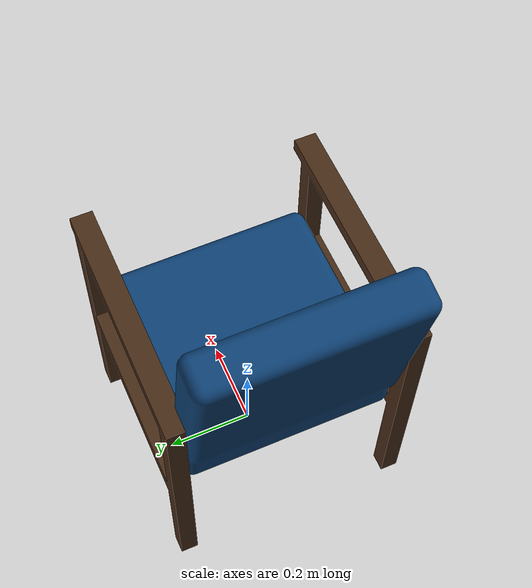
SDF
<?xml version="1.0"?>
<sdf version="1.9">
  <model name="freecad_chair">
    <static>true</static>
    <link name="chair_link">
      <visual name="frame">
        <geometry>
          <mesh>
            <uri>model://freecad_chair/meshes/chair_frame.stl</uri>
            <scale>0.001 0.001 0.001</scale>
          </mesh>
        </geometry>
        <material>
          <ambient>0.28 0.17 0.09 1</ambient>
          <diffuse>0.28 0.17 0.09 1</diffuse>
          <specular>0.15 0.15 0.15 1</specular>
        </material>
      </visual>
      <visual name="cushions">
        <geometry>
          <mesh>
            <uri>model://freecad_chair/meshes/chair_cushions.stl</uri>
            <scale>0.001 0.001 0.001</scale>
          </mesh>
        </geometry>
        <material>
          <ambient>0.05 0.25 0.45 1</ambient>
          <diffuse>0.05 0.25 0.45 1</diffuse>
          <specular>0.05 0.05 0.05 1</specular>
        </material>
      </visual>

      <!-- Patas: 0.04 x 0.04 x 0.62 en las esquinas -->
      <collision name="leg_front_left">
        <pose>0.24 0.26 0.31 0 0 0</pose>
        <geometry><box><size>0.04 0.04 0.62</size></box></geometry>
      </collision>
      <collision name="leg_front_right">
        <pose>0.24 -0.26 0.31 0 0 0</pose>
        <geometry><box><size>0.04 0.04 0.62</size></box></geometry>
      </collision>
      <collision name="leg_rear_left">
        <pose>-0.24 0.26 0.31 0 0 0</pose>
        <geometry><box><size>0.04 0.04 0.62</size></box></geometry>
      </collision>
      <collision name="leg_rear_right">
        <pose>-0.24 -0.26 0.31 0 0 0</pose>
        <geometry><box><size>0.04 0.04 0.62</size></box></geometry>
      </collision>
      <!-- Brazos -->
      <collision name="arm_left">
        <pose>0.01 0.255 0.635 0 0 0</pose>
        <geometry><box><size>0.54 0.05 0.03</size></box></geometry>
      </collision>
      <collision name="arm_right">
        <pose>0.01 -0.255 0.635 0 0 0</pose>
        <geometry><box><size>0.54 0.05 0.03</size></box></geometry>
      </collision>
      <!-- Travesaños laterales y frontal (el frontal hace de faldón para la profundidad) -->
      <collision name="side_rail_left">
        <pose>0 0.26 0.32 0 0 0</pose>
        <geometry><box><size>0.44 0.04 0.04</size></box></geometry>
      </collision>
      <collision name="side_rail_right">
        <pose>0 -0.26 0.32 0 0 0</pose>
        <geometry><box><size>0.44 0.04 0.04</size></box></geometry>
      </collision>
      <collision name="front_rail">
        <pose>0.24 0 0.305 0 0 0</pose>
        <geometry><box><size>0.04 0.48 0.05</size></box></geometry>
      </collision>
      <!-- Cojines -->
      <collision name="seat_cushion">
        <pose>0.01 0 0.385 0 0 0</pose>
        <geometry><box><size>0.48 0.48 0.11</size></box></geometry>
      </collision>
      <collision name="backrest_cushion">
        <pose>-0.2407 0 0.6752 0 -0.1745 0</pose>
        <geometry><box><size>0.10 0.48 0.46</size></box></geometry>
      </collision>
    </link>
  </model>
</sdf>
